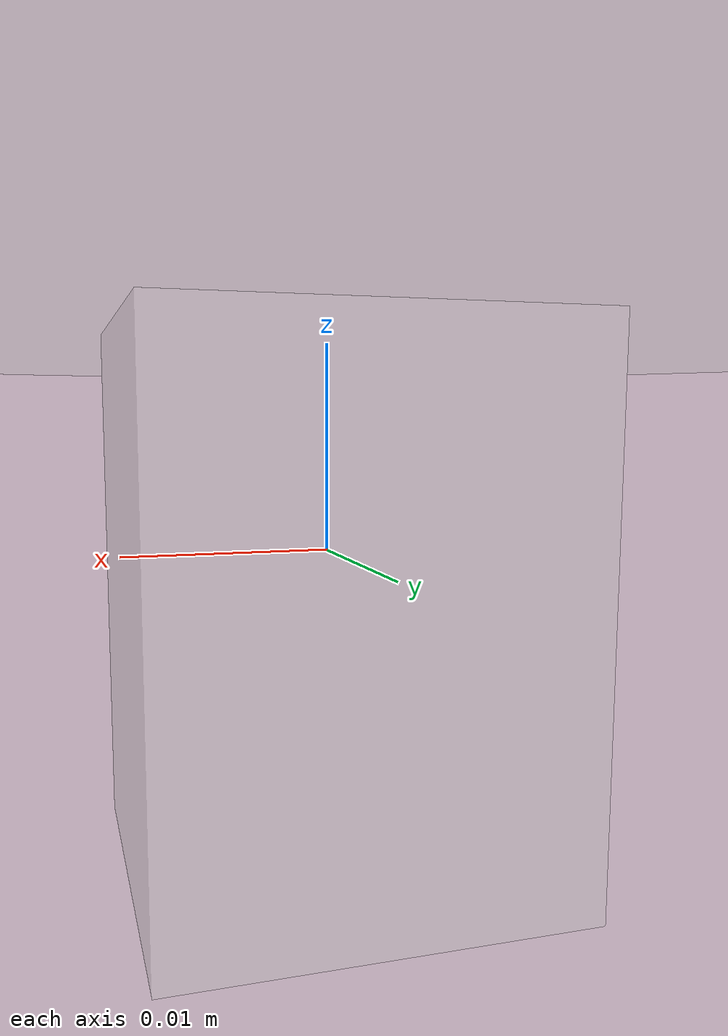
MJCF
<mujoco model="plate-visual">
  <worldbody>
    <body>

      <body name="object">
        <geom pos="0 0 0" size="0.01 0.01 0.016" type="box" conaffinity="0" contype="0" group="1" mass="0.0001" rgba="0.8 0.8 0.8 0.3"/>
        <geom pos="0 0 0.016" size="0.06 0.005" type="cylinder" conaffinity="0" contype="0" group="1" mass="0.0001" rgba="0.8 0.8 0.8 0.3"/>
      </body>

      <site rgba="0 0 0 0" size="0.001" pos="0.0 0.0 -0.02" name="bottom_site"/>
      <site rgba="0 0 0 0" size="0.001" pos="0.0 0.0 0.034" name="top_site"/>
      <site rgba="0 0 0 0" size="0.001" pos="0.06 0 0" name="horizontal_radius_site"/>
    </body>
  </worldbody>
</mujoco>
